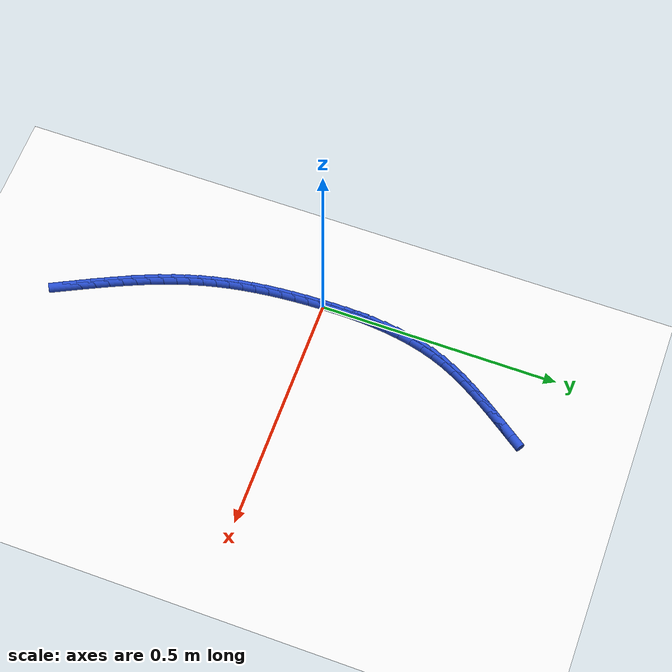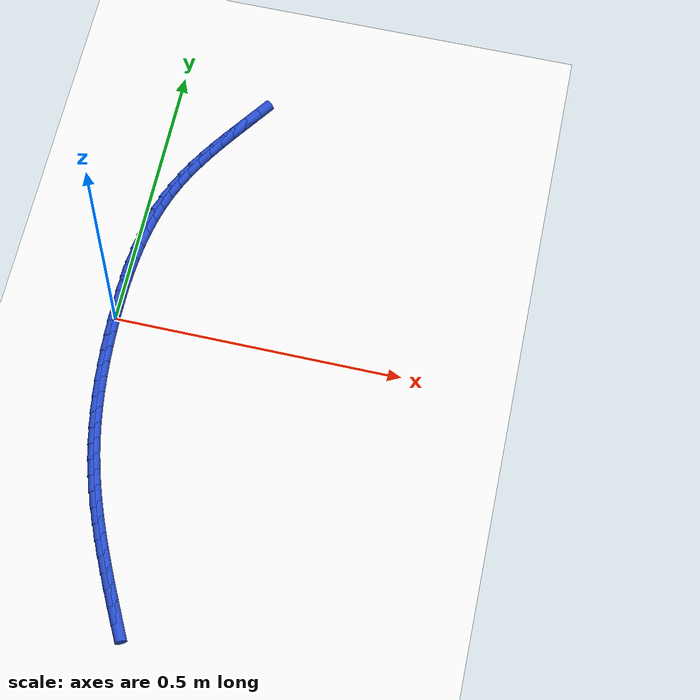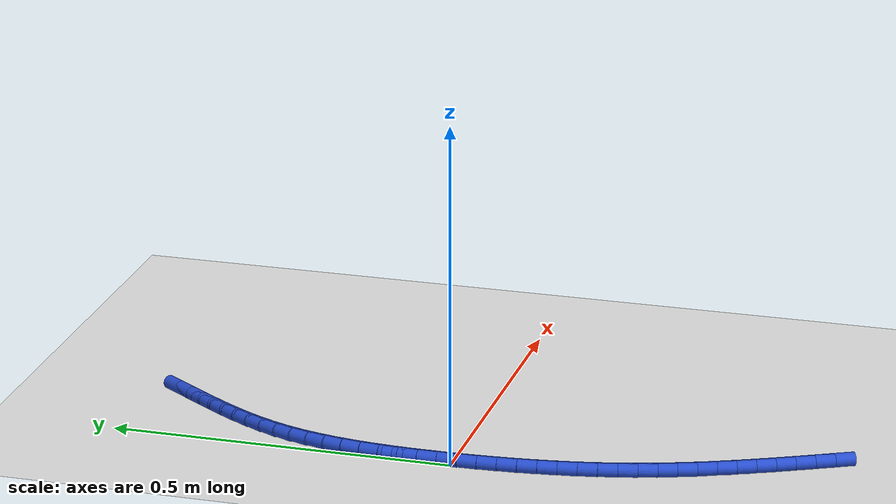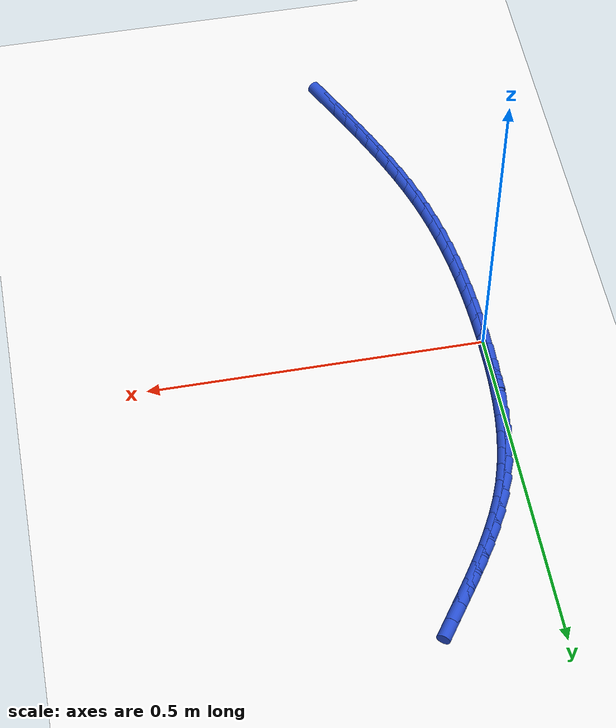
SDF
<sdf version="1.6">
 <world name="default">
  <model name="ground_plane">
   <static>1</static>
   <link name="link">
    <collision name="collision">
     <geometry><plane><normal>0 0 1</normal><size>100 100</size></plane></geometry>
     <surface><friction><ode><mu>100</mu><mu2>50</mu2></ode></friction></surface>
    </collision>
    <visual name="visual">
     <cast_shadows>0</cast_shadows>
     <geometry><plane><normal>0 0 1</normal><size>100 100</size></plane></geometry>
     <material>
      <script><uri>file://media/materials/scripts/gazebo.material</uri><name>Gazebo/WhiteGlow</name></script>
     </material>
    </visual>
   </link>
  </model>
  <model name="line">
   <link name="link_0">
    <pose>2.2768245622195593e-17 -6.938893903907228e-17 0.01 0 1.57 -1.5595225742112602</pose>
    <collision name="collision">
     <geometry><cylinder><radius>0.01</radius><length>0.08</length></cylinder></geometry>
    </collision>
    <visual name="visual">
     <material>
      <script><name>Gazebo/Blue</name><uri>file://media/materials/scripts/gazebo.material</uri></script>
     </material>
     <geometry><cylinder><radius>0.01</radius><length>0.08</length></cylinder></geometry>
    </visual>
   </link>
   <link name="link_1">
    <pose>-0.00032222240699589856 0.02858043524278014 0.01 0 1.57 1.5596636055893285</pose>
    <collision name="collision">
     <geometry><cylinder><radius>0.01</radius><length>0.08</length></cylinder></geometry>
    </collision>
    <visual name="visual">
     <material>
      <script><name>Gazebo/Blue</name><uri>file://media/materials/scripts/gazebo.material</uri></script>
     </material>
     <geometry><cylinder><radius>0.01</radius><length>0.08</length></cylinder></geometry>
    </visual>
   </link>
   <link name="link_2">
    <pose>-3.944086268896623e-06 0.057168699142537055 0.01 0 1.57 1.5327066648585885</pose>
    <collision name="collision">
     <geometry><cylinder><radius>0.01</radius><length>0.08</length></cylinder></geometry>
    </collision>
    <visual name="visual">
     <material>
      <script><name>Gazebo/Blue</name><uri>file://media/materials/scripts/gazebo.material</uri></script>
     </material>
     <geometry><cylinder><radius>0.01</radius><length>0.08</length></cylinder></geometry>
    </visual>
   </link>
   <link name="link_3">
    <pose>0.0010824529390785905 0.08567700112342419 0.01 0 1.57 1.5009701846804488</pose>
    <collision name="collision">
     <geometry><cylinder><radius>0.01</radius><length>0.08</length></cylinder></geometry>
    </collision>
    <visual name="visual">
     <material>
      <script><name>Gazebo/Blue</name><uri>file://media/materials/scripts/gazebo.material</uri></script>
     </material>
     <geometry><cylinder><radius>0.01</radius><length>0.08</length></cylinder></geometry>
    </visual>
   </link>
   <link name="link_4">
    <pose>0.003064586645944122 0.11401755060959495 0.01 0 1.57 1.4641880685861846</pose>
    <collision name="collision">
     <geometry><cylinder><radius>0.01</radius><length>0.08</length></cylinder></geometry>
    </collision>
    <visual name="visual">
     <material>
      <script><name>Gazebo/Blue</name><uri>file://media/materials/scripts/gazebo.material</uri></script>
     </material>
     <geometry><cylinder><radius>0.01</radius><length>0.08</length></cylinder></geometry>
    </visual>
   </link>
   <link name="link_5">
    <pose>0.00607007501122526 0.14210255702520289 0.01 0 1.57 1.422075245421062</pose>
    <collision name="collision">
     <geometry><cylinder><radius>0.01</radius><length>0.08</length></cylinder></geometry>
    </collision>
    <visual name="visual">
     <material>
      <script><name>Gazebo/Blue</name><uri>file://media/materials/scripts/gazebo.material</uri></script>
     </material>
     <geometry><cylinder><radius>0.01</radius><length>0.08</length></cylinder></geometry>
    </visual>
   </link>
   <link name="link_6">
    <pose>0.010226536011819566 0.16984422979440142 0.01 0 1.57 1.3743535984373032</pose>
    <collision name="collision">
     <geometry><cylinder><radius>0.01</radius><length>0.08</length></cylinder></geometry>
    </collision>
    <visual name="visual">
     <material>
      <script><name>Gazebo/Blue</name><uri>file://media/materials/scripts/gazebo.material</uri></script>
     </material>
     <geometry><cylinder><radius>0.01</radius><length>0.08</length></cylinder></geometry>
    </visual>
   </link>
   <link name="link_7">
    <pose>0.0156615876246246 0.19715477834134418 0.01 0 1.57 1.3207881635108816</pose>
    <collision name="collision">
     <geometry><cylinder><radius>0.01</radius><length>0.08</length></cylinder></geometry>
    </collision>
    <visual name="visual">
     <material>
      <script><name>Gazebo/Blue</name><uri>file://media/materials/scripts/gazebo.material</uri></script>
     </material>
     <geometry><cylinder><radius>0.01</radius><length>0.08</length></cylinder></geometry>
    </visual>
   </link>
   <link name="link_8">
    <pose>0.022502847826537914 0.22394641209018434 0.01 0 1.57 1.2612350873705345</pose>
    <collision name="collision">
     <geometry><cylinder><radius>0.01</radius><length>0.08</length></cylinder></geometry>
    </collision>
    <visual name="visual">
     <material>
      <script><name>Gazebo/Blue</name><uri>file://media/materials/scripts/gazebo.material</uri></script>
     </material>
     <geometry><cylinder><radius>0.01</radius><length>0.08</length></cylinder></geometry>
    </visual>
   </link>
   <link name="link_9">
    <pose>0.030877934594457077 0.2501313404650757 0.01 0 1.57 1.1963981009558102</pose>
    <collision name="collision">
     <geometry><cylinder><radius>0.01</radius><length>0.08</length></cylinder></geometry>
    </collision>
    <visual name="visual">
     <material>
      <script><name>Gazebo/Blue</name><uri>file://media/materials/scripts/gazebo.material</uri></script>
     </material>
     <geometry><cylinder><radius>0.01</radius><length>0.08</length></cylinder></geometry>
    </visual>
   </link>
   <link name="link_10">
    <pose>0.04089759297079924 0.2756310843312889 0.01 0 1.57 1.1347990916974937</pose>
    <collision name="collision">
     <geometry><cylinder><radius>0.01</radius><length>0.08</length></cylinder></geometry>
    </collision>
    <visual name="visual">
     <material>
      <script><name>Gazebo/Blue</name><uri>file://media/materials/scripts/gazebo.material</uri></script>
     </material>
     <geometry><cylinder><radius>0.01</radius><length>0.08</length></cylinder></geometry>
    </visual>
   </link>
   <link name="link_11">
    <pose>0.05247334865893971 0.3004771050713818 0.01 0 1.57 1.0822572378993665</pose>
    <collision name="collision">
     <geometry><cylinder><radius>0.01</radius><length>0.08</length></cylinder></geometry>
    </collision>
    <visual name="visual">
     <material>
      <script><name>Gazebo/Blue</name><uri>file://media/materials/scripts/gazebo.material</uri></script>
     </material>
     <geometry><cylinder><radius>0.01</radius><length>0.08</length></cylinder></geometry>
    </visual>
   </link>
   <link name="link_12">
    <pose>0.06538672510684478 0.3247726066772237 0.01 0 1.57 1.0390343614038375</pose>
    <collision name="collision">
     <geometry><cylinder><radius>0.01</radius><length>0.08</length></cylinder></geometry>
    </collision>
    <visual name="visual">
     <material>
      <script><name>Gazebo/Blue</name><uri>file://media/materials/scripts/gazebo.material</uri></script>
     </material>
     <geometry><cylinder><radius>0.01</radius><length>0.08</length></cylinder></geometry>
    </visual>
   </link>
   <link name="link_13">
    <pose>0.07941701187823322 0.34862202592456326 0.01 0 1.57 1.005067085501033</pose>
    <collision name="collision">
     <geometry><cylinder><radius>0.01</radius><length>0.08</length></cylinder></geometry>
    </collision>
    <visual name="visual">
     <material>
      <script><name>Gazebo/Blue</name><uri>file://media/materials/scripts/gazebo.material</uri></script>
     </material>
     <geometry><cylinder><radius>0.01</radius><length>0.08</length></cylinder></geometry>
    </visual>
   </link>
   <link name="link_14">
    <pose>0.0943434985368238 0.37212979958914993 0.01 0 1.57 0.9801723669004929</pose>
    <collision name="collision">
     <geometry><cylinder><radius>0.01</radius><length>0.08</length></cylinder></geometry>
    </collision>
    <visual name="visual">
     <material>
      <script><name>Gazebo/Blue</name><uri>file://media/materials/scripts/gazebo.material</uri></script>
     </material>
     <geometry><cylinder><radius>0.01</radius><length>0.08</length></cylinder></geometry>
    </visual>
   </link>
   <link name="link_15">
    <pose>0.10994547464633536 0.39540036444673243 0.01 0 1.57 0.9641340377248588</pose>
    <collision name="collision">
     <geometry><cylinder><radius>0.01</radius><length>0.08</length></cylinder></geometry>
    </collision>
    <visual name="visual">
     <material>
      <script><name>Gazebo/Blue</name><uri>file://media/materials/scripts/gazebo.material</uri></script>
     </material>
     <geometry><cylinder><radius>0.01</radius><length>0.08</length></cylinder></geometry>
    </visual>
   </link>
   <link name="link_16">
    <pose>0.1260022297704866 0.4185381572730598 0.01 0 1.57 0.9567613810631997</pose>
    <collision name="collision">
     <geometry><cylinder><radius>0.01</radius><length>0.08</length></cylinder></geometry>
    </collision>
    <visual name="visual">
     <material>
      <script><name>Gazebo/Blue</name><uri>file://media/materials/scripts/gazebo.material</uri></script>
     </material>
     <geometry><cylinder><radius>0.01</radius><length>0.08</length></cylinder></geometry>
    </visual>
   </link>
   <link name="link_17">
    <pose>0.14229305347299637 0.44164761484388104 0.01 0 1.57 0.9579231480493033</pose>
    <collision name="collision">
     <geometry><cylinder><radius>0.01</radius><length>0.08</length></cylinder></geometry>
    </collision>
    <visual name="visual">
     <material>
      <script><name>Gazebo/Blue</name><uri>file://media/materials/scripts/gazebo.material</uri></script>
     </material>
     <geometry><cylinder><radius>0.01</radius><length>0.08</length></cylinder></geometry>
    </visual>
   </link>
   <link name="link_221">
    <pose>0.13822261087219972 -0.5084795231271105 0.01 0 1.57 -1.1082424522112906</pose>
    <collision name="collision">
     <geometry><cylinder><radius>0.01</radius><length>0.08</length></cylinder></geometry>
    </collision>
    <visual name="visual">
     <material>
      <script><name>Gazebo/Blue</name><uri>file://media/materials/scripts/gazebo.material</uri></script>
     </material>
     <geometry><cylinder><radius>0.01</radius><length>0.08</length></cylinder></geometry>
    </visual>
   </link>
   <link name="link_222">
    <pose>0.1252435338946575 -0.48245023522439867 0.01 0 1.57 -1.1153649204981124</pose>
    <collision name="collision">
     <geometry><cylinder><radius>0.01</radius><length>0.08</length></cylinder></geometry>
    </collision>
    <visual name="visual">
     <material>
      <script><name>Gazebo/Blue</name><uri>file://media/materials/scripts/gazebo.material</uri></script>
     </material>
     <geometry><cylinder><radius>0.01</radius><length>0.08</length></cylinder></geometry>
    </visual>
   </link>
   <link name="link_223">
    <pose>0.1125951964504103 -0.4566252606925845 0.01 0 1.57 -1.1257702734330552</pose>
    <collision name="collision">
     <geometry><cylinder><radius>0.01</radius><length>0.08</length></cylinder></geometry>
    </collision>
    <visual name="visual">
     <material>
      <script><name>Gazebo/Blue</name><uri>file://media/materials/scripts/gazebo.material</uri></script>
     </material>
     <geometry><cylinder><radius>0.01</radius><length>0.08</length></cylinder></geometry>
    </visual>
   </link>
   <link name="link_224">
    <pose>0.10034637729684145 -0.4309429024502523 0.01 0 1.57 -1.1395849499049548</pose>
    <collision name="collision">
     <geometry><cylinder><radius>0.01</radius><length>0.08</length></cylinder></geometry>
    </collision>
    <visual name="visual">
     <material>
      <script><name>Gazebo/Blue</name><uri>file://media/materials/scripts/gazebo.material</uri></script>
     </material>
     <geometry><cylinder><radius>0.01</radius><length>0.08</length></cylinder></geometry>
    </visual>
   </link>
   <link name="link_225">
    <pose>0.08856677009020779 -0.4053399591478658 0.01 0 1.57 -1.1568612818596347</pose>
    <collision name="collision">
     <geometry><cylinder><radius>0.01</radius><length>0.08</length></cylinder></geometry>
    </collision>
    <visual name="visual">
     <material>
      <script><name>Gazebo/Blue</name><uri>file://media/materials/scripts/gazebo.material</uri></script>
     </material>
     <geometry><cylinder><radius>0.01</radius><length>0.08</length></cylinder></geometry>
    </visual>
   </link>
   <link name="link_226">
    <pose>0.07732606848676629 -0.3797532294358889 0.01 0 1.57 -1.1776222113026134</pose>
    <collision name="collision">
     <geometry><cylinder><radius>0.01</radius><length>0.08</length></cylinder></geometry>
    </collision>
    <visual name="visual">
     <material>
      <script><name>Gazebo/Blue</name><uri>file://media/materials/scripts/gazebo.material</uri></script>
     </material>
     <geometry><cylinder><radius>0.01</radius><length>0.08</length></cylinder></geometry>
    </visual>
   </link>
   <link name="link_227">
    <pose>0.06669396614277415 -0.35411951196478597 0.01 0 1.57 -1.2018537143487735</pose>
    <collision name="collision">
     <geometry><cylinder><radius>0.01</radius><length>0.08</length></cylinder></geometry>
    </collision>
    <visual name="visual">
     <material>
      <script><name>Gazebo/Blue</name><uri>file://media/materials/scripts/gazebo.material</uri></script>
     </material>
     <geometry><cylinder><radius>0.01</radius><length>0.08</length></cylinder></geometry>
    </visual>
   </link>
   <link name="link_228">
    <pose>0.056740156714488454 -0.3283756053850212 0.01 0 1.57 -1.2294965586249962</pose>
    <collision name="collision">
     <geometry><cylinder><radius>0.01</radius><length>0.08</length></cylinder></geometry>
    </collision>
    <visual name="visual">
     <material>
      <script><name>Gazebo/Blue</name><uri>file://media/materials/scripts/gazebo.material</uri></script>
     </material>
     <geometry><cylinder><radius>0.01</radius><length>0.08</length></cylinder></geometry>
    </visual>
   </link>
   <link name="link_229">
    <pose>0.047534333858166265 -0.3024583083470588 0.01 0 1.57 -1.260438061742887</pose>
    <collision name="collision">
     <geometry><cylinder><radius>0.01</radius><length>0.08</length></cylinder></geometry>
    </collision>
    <visual name="visual">
     <material>
      <script><name>Gazebo/Blue</name><uri>file://media/materials/scripts/gazebo.material</uri></script>
     </material>
     <geometry><cylinder><radius>0.01</radius><length>0.08</length></cylinder></geometry>
    </visual>
   </link>
   <link name="link_230">
    <pose>0.03914619123006451 -0.2763044195013621 0.01 0 1.57 -1.2944733536058743</pose>
    <collision name="collision">
     <geometry><cylinder><radius>0.01</radius><length>0.08</length></cylinder></geometry>
    </collision>
    <visual name="visual">
     <material>
      <script><name>Gazebo/Blue</name><uri>file://media/materials/scripts/gazebo.material</uri></script>
     </material>
     <geometry><cylinder><radius>0.01</radius><length>0.08</length></cylinder></geometry>
    </visual>
   </link>
   <link name="link_231">
    <pose>0.03164468661969418 -0.24985131179988115 0.01 0 1.57 -1.3295691321277578</pose>
    <collision name="collision">
     <geometry><cylinder><radius>0.01</radius><length>0.08</length></cylinder></geometry>
    </collision>
    <visual name="visual">
     <material>
      <script><name>Gazebo/Blue</name><uri>file://media/materials/scripts/gazebo.material</uri></script>
     </material>
     <geometry><cylinder><radius>0.01</radius><length>0.08</length></cylinder></geometry>
    </visual>
   </link>
   <link name="link_232">
    <pose>0.025055953602713323 -0.22306978001949146 0.01 0 1.57 -1.3628502149238786</pose>
    <collision name="collision">
     <geometry><cylinder><radius>0.01</radius><length>0.08</length></cylinder></geometry>
    </collision>
    <visual name="visual">
     <material>
      <script><name>Gazebo/Blue</name><uri>file://media/materials/scripts/gazebo.material</uri></script>
     </material>
     <geometry><cylinder><radius>0.01</radius><length>0.08</length></cylinder></geometry>
    </visual>
   </link>
   <link name="link_233">
    <pose>0.019340500650417456 -0.1959818355398182 0.01 0 1.57 -1.3940846993051337</pose>
    <collision name="collision">
     <geometry><cylinder><radius>0.01</radius><length>0.08</length></cylinder></geometry>
    </collision>
    <visual name="visual">
     <material>
      <script><name>Gazebo/Blue</name><uri>file://media/materials/scripts/gazebo.material</uri></script>
     </material>
     <geometry><cylinder><radius>0.01</radius><length>0.08</length></cylinder></geometry>
    </visual>
   </link>
   <link name="link_234">
    <pose>0.014453278098574133 -0.1686138275441691 0.01 0 1.57 -1.423295197120877</pose>
    <collision name="collision">
     <geometry><cylinder><radius>0.01</radius><length>0.08</length></cylinder></geometry>
    </collision>
    <visual name="visual">
     <material>
      <script><name>Gazebo/Blue</name><uri>file://media/materials/scripts/gazebo.material</uri></script>
     </material>
     <geometry><cylinder><radius>0.01</radius><length>0.08</length></cylinder></geometry>
    </visual>
   </link>
   <link name="link_235">
    <pose>0.010349236282950886 -0.1409921052158515 0.01 0 1.57 -1.4505172169633158</pose>
    <collision name="collision">
     <geometry><cylinder><radius>0.01</radius><length>0.08</length></cylinder></geometry>
    </collision>
    <visual name="visual">
     <material>
      <script><name>Gazebo/Blue</name><uri>file://media/materials/scripts/gazebo.material</uri></script>
     </material>
     <geometry><cylinder><radius>0.01</radius><length>0.08</length></cylinder></geometry>
    </visual>
   </link>
   <link name="link_236">
    <pose>0.006983325539315275 -0.11314301773817306 0.01 0 1.57 -1.4757954796839896</pose>
    <collision name="collision">
     <geometry><cylinder><radius>0.01</radius><length>0.08</length></cylinder></geometry>
    </collision>
    <visual name="visual">
     <material>
      <script><name>Gazebo/Blue</name><uri>file://media/materials/scripts/gazebo.material</uri></script>
     </material>
     <geometry><cylinder><radius>0.01</radius><length>0.08</length></cylinder></geometry>
    </visual>
   </link>
   <link name="link_237">
    <pose>0.00431049620343484 -0.08509291429444121 0.01 0 1.57 -1.4991806927734779</pose>
    <collision name="collision">
     <geometry><cylinder><radius>0.01</radius><length>0.08</length></cylinder></geometry>
    </collision>
    <visual name="visual">
     <material>
      <script><name>Gazebo/Blue</name><uri>file://media/materials/scripts/gazebo.material</uri></script>
     </material>
     <geometry><cylinder><radius>0.01</radius><length>0.08</length></cylinder></geometry>
    </visual>
   </link>
   <link name="link_238">
    <pose>0.0022856986110770788 -0.05686814406796281 0.01 0 1.57 -1.5207267968474627</pose>
    <collision name="collision">
     <geometry><cylinder><radius>0.01</radius><length>0.08</length></cylinder></geometry>
    </collision>
    <visual name="visual">
     <material>
      <script><name>Gazebo/Blue</name><uri>file://media/materials/scripts/gazebo.material</uri></script>
     </material>
     <geometry><cylinder><radius>0.01</radius><length>0.08</length></cylinder></geometry>
    </visual>
   </link>
   <link name="link_239">
    <pose>0.0008638830980096481 -0.02849505624204684 0.01 0 1.57 -1.5404886633678405</pose>
    <collision name="collision">
     <geometry><cylinder><radius>0.01</radius><length>0.08</length></cylinder></geometry>
    </collision>
    <visual name="visual">
     <material>
      <script><name>Gazebo/Blue</name><uri>file://media/materials/scripts/gazebo.material</uri></script>
     </material>
     <geometry><cylinder><radius>0.01</radius><length>0.08</length></cylinder></geometry>
    </visual>
   </link>
   <link name="link_240">
    <pose>2.927345865710862e-17 -1.3183898417423734e-16 0.01 0 1.57 -1.5585202014890214</pose>
    <collision name="collision">
     <geometry><cylinder><radius>0.01</radius><length>0.08</length></cylinder></geometry>
    </collision>
    <visual name="visual">
     <material>
      <script><name>Gazebo/Blue</name><uri>file://media/materials/scripts/gazebo.material</uri></script>
     </material>
     <geometry><cylinder><radius>0.01</radius><length>0.08</length></cylinder></geometry>
    </visual>
   </link>
   <link name="link_241">
    <pose>-0.00035100034718422773 0.028590675474869848 0.01 0 1.57 1.5667198329250553</pose>
    <collision name="collision">
     <geometry><cylinder><radius>0.01</radius><length>0.08</length></cylinder></geometry>
    </collision>
    <visual name="visual">
     <material>
      <script><name>Gazebo/Blue</name><uri>file://media/materials/scripts/gazebo.material</uri></script>
     </material>
     <geometry><cylinder><radius>0.01</radius><length>0.08</length></cylinder></geometry>
    </visual>
   </link>
   <link name="link_242">
    <pose>-0.00023416760777557897 0.05725062099925551 0.01 0 1.57 -1.5667061300802583</pose>
    <collision name="collision">
     <geometry><cylinder><radius>0.01</radius><length>0.08</length></cylinder></geometry>
    </collision>
    <visual name="visual">
     <material>
      <script><name>Gazebo/Blue</name><uri>file://media/materials/scripts/gazebo.material</uri></script>
     </material>
     <geometry><cylinder><radius>0.01</radius><length>0.08</length></cylinder></geometry>
    </visual>
   </link>
  </model>
 </world>
</sdf>
